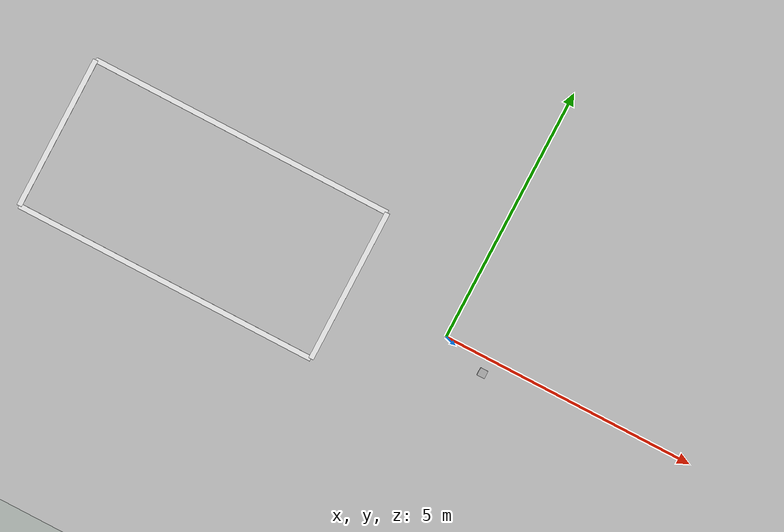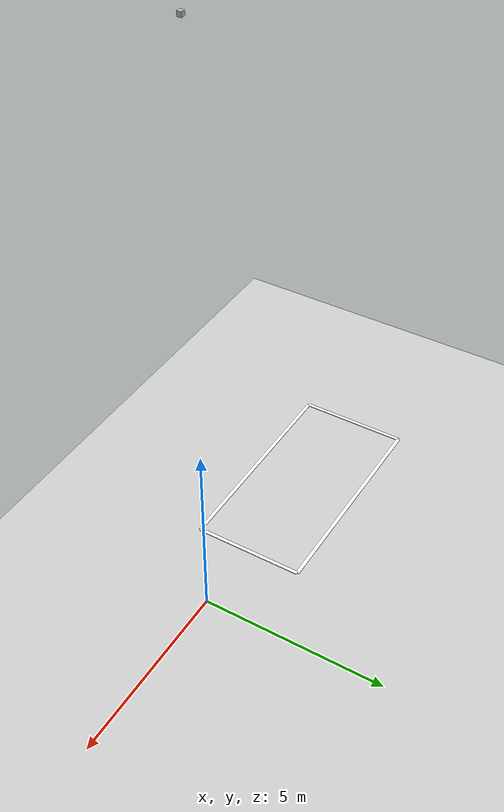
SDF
<?xml version="1.0"?>
<sdf version="1.6">
  <world name="simple_parking">

    <!-- Physics -->
    <physics type="ode">
      <max_step_size>0.001</max_step_size>
      <real_time_factor>1</real_time_factor>
      <real_time_update_rate>1000</real_time_update_rate>
    </physics>

    <!-- Lighting -->
    <include>
      <uri>model://sun</uri>
    </include>

    <!-- Ground Plane (20m x 20m) -->
    <model name="ground_plane">
      <static>true</static>
      <link name="link">
        <collision name="collision">
          <geometry>
            <plane>
              <normal>0 0 1</normal>
              <size>20 20</size>
            </plane>
          </geometry>
        </collision>
        <visual name="visual">
          <geometry>
            <plane>
              <normal>0 0 1</normal>
              <size>20 20</size>
            </plane>
          </geometry>
          <material>
            <ambient>0.5 0.5 0.5 1</ambient>
            <diffuse>0.8 0.8 0.8 1</diffuse>
          </material>
        </visual>
      </link>
    </model>

    <!-- Parking Rectangle (6m x 3m visual marker) -->
    <model name="parking_rectangle">
      <static>true</static>
      <pose>-5 0 0.01 0 0 0</pose>
      <link name="link">
        <visual name="front_line">
          <pose>3 0 0 0 0 0</pose>
          <geometry>
            <box>
              <size>0.1 3 0.02</size>
            </box>
          </geometry>
          <material>
            <ambient>1 1 1 1</ambient>
            <diffuse>1 1 1 1</diffuse>
          </material>
        </visual>
        <visual name="back_line">
          <pose>-3 0 0 0 0 0</pose>
          <geometry>
            <box>
              <size>0.1 3 0.02</size>
            </box>
          </geometry>
          <material>
            <ambient>1 1 1 1</ambient>
            <diffuse>1 1 1 1</diffuse>
          </material>
        </visual>
        <visual name="left_line">
          <pose>0 1.5 0 0 0 0</pose>
          <geometry>
            <box>
              <size>6 0.1 0.02</size>
            </box>
          </geometry>
          <material>
            <ambient>1 1 1 1</ambient>
            <diffuse>1 1 1 1</diffuse>
          </material>
        </visual>
        <visual name="right_line">
          <pose>0 -1.5 0 0 0 0</pose>
          <geometry>
            <box>
              <size>6 0.1 0.02</size>
            </box>
          </geometry>
          <material>
            <ambient>1 1 1 1</ambient>
            <diffuse>1 1 1 1</diffuse>
          </material>
        </visual>
      </link>
    </model>

    <!-- Overhead Camera -->
    <model name="overhead_camera">
      <static>true</static>
      <pose>0 0 15 0 1.5708 0</pose>
      <link name="camera_link">
        <visual name="visual">
          <geometry>
            <box>
              <size>0.1 0.1 0.1</size>
            </box>
          </geometry>
        </visual>

        <sensor name="overhead_camera_sensor" type="camera">
          <always_on>true</always_on>
          <update_rate>5.0</update_rate>
          <camera name="overhead_camera">
            <horizontal_fov>1.5708</horizontal_fov>
            <image>
              <width>640</width>
              <height>480</height>
              <format>R8G8B8</format>
            </image>
            <clip>
              <near>0.1</near>
              <far>100</far>
            </clip>
          </camera>
          <visualize>false</visualize>

          <plugin name="overhead_camera_controller" filename="libgazebo_ros_camera.so">
            <ros>
              <namespace>/</namespace>
              <remapping>~/image_raw:=/overhead/image_raw</remapping>
              <remapping>~/camera_info:=/overhead/camera_info</remapping>
            </ros>
            <camera_name>overhead</camera_name>
            <frame_name>camera_link</frame_name>
            <hack_baseline>0.07</hack_baseline>
          </plugin>
        </sensor>
      </link>
    </model>

  </world>
</sdf>
